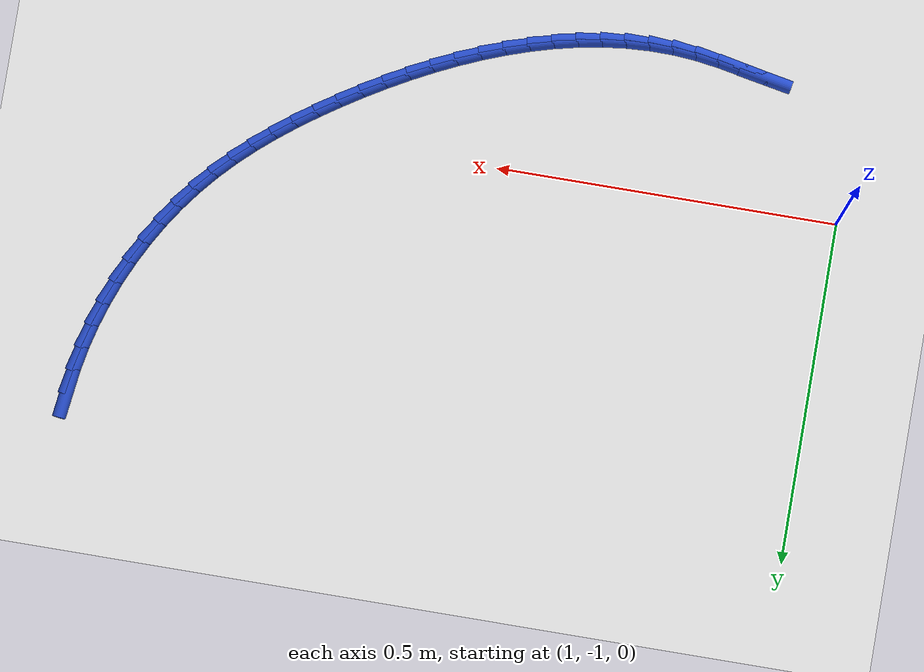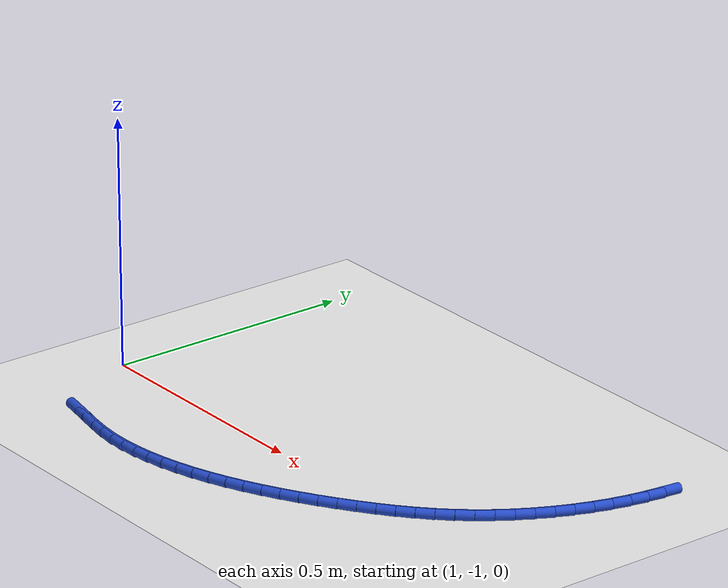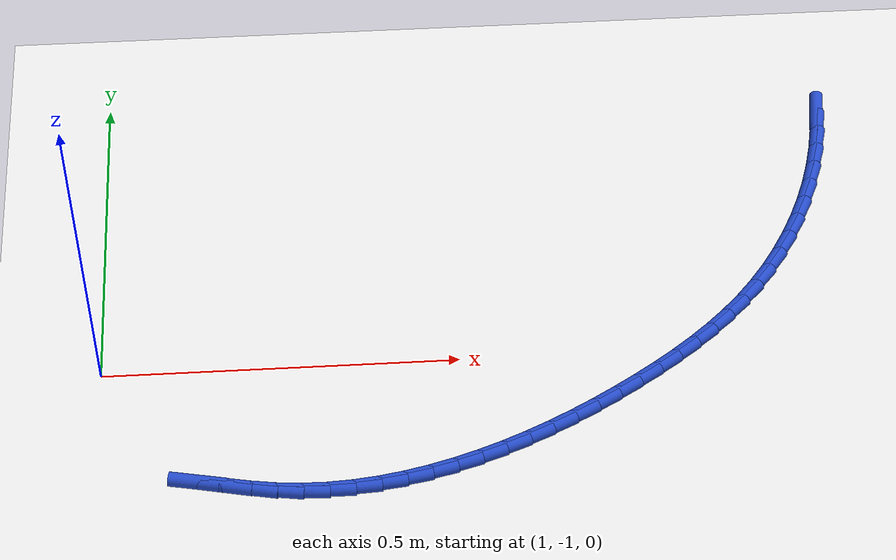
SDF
<sdf version="1.6">
 <world name="default">
  <model name="ground_plane">
   <static>1</static>
   <link name="link">
    <collision name="collision">
     <geometry><plane><normal>0 0 1</normal><size>100 100</size></plane></geometry>
     <surface><friction><ode><mu>100</mu><mu2>50</mu2></ode></friction></surface>
    </collision>
    <visual name="visual">
     <cast_shadows>0</cast_shadows>
     <geometry><plane><normal>0 0 1</normal><size>100 100</size></plane></geometry>
     <material>
      <script><uri>file://media/materials/scripts/gazebo.material</uri><name>Gazebo/WhiteGlow</name></script>
     </material>
    </visual>
   </link>
  </model>
  <model name="line">
   <link name="link_122">
    <pose>2.061591960252401 -0.5762138974735092 0.01 0 1.57 1.4395167184632929</pose>
    <collision name="collision">
     <geometry><cylinder><radius>0.01</radius><length>0.08</length></cylinder></geometry>
    </collision>
    <visual name="visual">
     <material>
      <script><name>Gazebo/Blue</name><uri>file://media/materials/scripts/gazebo.material</uri></script>
     </material>
     <geometry><cylinder><radius>0.01</radius><length>0.08</length></cylinder></geometry>
    </visual>
   </link>
   <link name="link_123">
    <pose>2.0570620439866487 -0.6105213044536851 0.01 0 1.57 1.3784179722360077</pose>
    <collision name="collision">
     <geometry><cylinder><radius>0.01</radius><length>0.08</length></cylinder></geometry>
    </collision>
    <visual name="visual">
     <material>
      <script><name>Gazebo/Blue</name><uri>file://media/materials/scripts/gazebo.material</uri></script>
     </material>
     <geometry><cylinder><radius>0.01</radius><length>0.08</length></cylinder></geometry>
    </visual>
   </link>
   <link name="link_124">
    <pose>2.050372027196258 -0.6448665467615043 0.01 0 1.57 1.319439212764857</pose>
    <collision name="collision">
     <geometry><cylinder><radius>0.01</radius><length>0.08</length></cylinder></geometry>
    </collision>
    <visual name="visual">
     <material>
      <script><name>Gazebo/Blue</name><uri>file://media/materials/scripts/gazebo.material</uri></script>
     </material>
     <geometry><cylinder><radius>0.01</radius><length>0.08</length></cylinder></geometry>
    </visual>
   </link>
   <link name="link_125">
    <pose>2.0415884331198746 -0.6790721692143837 0.01 0 1.57 1.262169212749637</pose>
    <collision name="collision">
     <geometry><cylinder><radius>0.01</radius><length>0.08</length></cylinder></geometry>
    </collision>
    <visual name="visual">
     <material>
      <script><name>Gazebo/Blue</name><uri>file://media/materials/scripts/gazebo.material</uri></script>
     </material>
     <geometry><cylinder><radius>0.01</radius><length>0.08</length></cylinder></geometry>
    </visual>
   </link>
   <link name="link_126">
    <pose>2.0307853260558293 -0.712957422364831 0.01 0 1.57 1.2060122009495136</pose>
    <collision name="collision">
     <geometry><cylinder><radius>0.01</radius><length>0.08</length></cylinder></geometry>
    </collision>
    <visual name="visual">
     <material>
      <script><name>Gazebo/Blue</name><uri>file://media/materials/scripts/gazebo.material</uri></script>
     </material>
     <geometry><cylinder><radius>0.01</radius><length>0.08</length></cylinder></geometry>
    </visual>
   </link>
   <link name="link_127">
    <pose>2.0180367703024498 -0.7463415567653549 0.01 0 1.57 1.1503883381426177</pose>
    <collision name="collision">
     <geometry><cylinder><radius>0.01</radius><length>0.08</length></cylinder></geometry>
    </collision>
    <visual name="visual">
     <material>
      <script><name>Gazebo/Blue</name><uri>file://media/materials/scripts/gazebo.material</uri></script>
     </material>
     <geometry><cylinder><radius>0.01</radius><length>0.08</length></cylinder></geometry>
    </visual>
   </link>
   <link name="link_128">
    <pose>2.0034168301580655 -0.7790438229684645 0.01 0 1.57 1.0947284491717477</pose>
    <collision name="collision">
     <geometry><cylinder><radius>0.01</radius><length>0.08</length></cylinder></geometry>
    </collision>
    <visual name="visual">
     <material>
      <script><name>Gazebo/Blue</name><uri>file://media/materials/scripts/gazebo.material</uri></script>
     </material>
     <geometry><cylinder><radius>0.01</radius><length>0.08</length></cylinder></geometry>
    </visual>
   </link>
   <link name="link_129">
    <pose>1.9869995699210063 -0.8108834715266688 0.01 0 1.57 1.0384680142832199</pose>
    <collision name="collision">
     <geometry><cylinder><radius>0.01</radius><length>0.08</length></cylinder></geometry>
    </collision>
    <visual name="visual">
     <material>
      <script><name>Gazebo/Blue</name><uri>file://media/materials/scripts/gazebo.material</uri></script>
     </material>
     <geometry><cylinder><radius>0.01</radius><length>0.08</length></cylinder></geometry>
    </visual>
   </link>
   <link name="link_130">
    <pose>1.968859053889602 -0.8416797529924764 0.01 0 1.57 0.9810415824294428</pose>
    <collision name="collision">
     <geometry><cylinder><radius>0.01</radius><length>0.08</length></cylinder></geometry>
    </collision>
    <visual name="visual">
     <material>
      <script><name>Gazebo/Blue</name><uri>file://media/materials/scripts/gazebo.material</uri></script>
     </material>
     <geometry><cylinder><radius>0.01</radius><length>0.08</length></cylinder></geometry>
    </visual>
   </link>
   <link name="link_131">
    <pose>1.949069346362181 -0.8712519179183962 0.01 0 1.57 0.9218787624622179</pose>
    <collision name="collision">
     <geometry><cylinder><radius>0.01</radius><length>0.08</length></cylinder></geometry>
    </collision>
    <visual name="visual">
     <material>
      <script><name>Gazebo/Blue</name><uri>file://media/materials/scripts/gazebo.material</uri></script>
     </material>
     <geometry><cylinder><radius>0.01</radius><length>0.08</length></cylinder></geometry>
    </visual>
   </link>
   <link name="link_132">
    <pose>1.9277045116370732 -0.8994192168569375 0.01 0 1.57 0.8609638166483321</pose>
    <collision name="collision">
     <geometry><cylinder><radius>0.01</radius><length>0.08</length></cylinder></geometry>
    </collision>
    <visual name="visual">
     <material>
      <script><name>Gazebo/Blue</name><uri>file://media/materials/scripts/gazebo.material</uri></script>
     </material>
     <geometry><cylinder><radius>0.01</radius><length>0.08</length></cylinder></geometry>
    </visual>
   </link>
   <link name="link_133">
    <pose>1.904841227279127 -0.9260280240328463 0.01 0 1.57 0.8024733586764066</pose>
    <collision name="collision">
     <geometry><cylinder><radius>0.01</radius><length>0.08</length></cylinder></geometry>
    </collision>
    <visual name="visual">
     <material>
      <script><name>Gazebo/Blue</name><uri>file://media/materials/scripts/gazebo.material</uri></script>
     </material>
     <geometry><cylinder><radius>0.01</radius><length>0.08</length></cylinder></geometry>
    </visual>
   </link>
   <link name="link_134">
    <pose>1.880576514487603 -0.9511358647601564 0.01 0 1.57 0.7489972754235198</pose>
    <collision name="collision">
     <geometry><cylinder><radius>0.01</radius><length>0.08</length></cylinder></geometry>
    </collision>
    <visual name="visual">
     <material>
      <script><name>Gazebo/Blue</name><uri>file://media/materials/scripts/gazebo.material</uri></script>
     </material>
     <geometry><cylinder><radius>0.01</radius><length>0.08</length></cylinder></geometry>
    </visual>
   </link>
   <link name="link_135">
    <pose>1.8550169317616545 -0.9748992541017447 0.01 0 1.57 0.7010188673986253</pose>
    <collision name="collision">
     <geometry><cylinder><radius>0.01</radius><length>0.08</length></cylinder></geometry>
    </collision>
    <visual name="visual">
     <material>
      <script><name>Gazebo/Blue</name><uri>file://media/materials/scripts/gazebo.material</uri></script>
     </material>
     <geometry><cylinder><radius>0.01</radius><length>0.08</length></cylinder></geometry>
    </visual>
   </link>
   <link name="link_136">
    <pose>1.8282690923387488 -0.997475275261558 0.01 0 1.57 0.6588134519586387</pose>
    <collision name="collision">
     <geometry><cylinder><radius>0.01</radius><length>0.08</length></cylinder></geometry>
    </collision>
    <visual name="visual">
     <material>
      <script><name>Gazebo/Blue</name><uri>file://media/materials/scripts/gazebo.material</uri></script>
     </material>
     <geometry><cylinder><radius>0.01</radius><length>0.08</length></cylinder></geometry>
    </visual>
   </link>
   <link name="link_137">
    <pose>1.8004396094563502 -1.019021011443542 0.01 0 1.57 0.6224960009613689</pose>
    <collision name="collision">
     <geometry><cylinder><radius>0.01</radius><length>0.08</length></cylinder></geometry>
    </collision>
    <visual name="visual">
     <material>
      <script><name>Gazebo/Blue</name><uri>file://media/materials/scripts/gazebo.material</uri></script>
     </material>
     <geometry><cylinder><radius>0.01</radius><length>0.08</length></cylinder></geometry>
    </visual>
   </link>
   <link name="link_138">
    <pose>1.7716350963519247 -1.0396935458516443 0.01 0 1.57 0.5920486630485645</pose>
    <collision name="collision">
     <geometry><cylinder><radius>0.01</radius><length>0.08</length></cylinder></geometry>
    </collision>
    <visual name="visual">
     <material>
      <script><name>Gazebo/Blue</name><uri>file://media/materials/scripts/gazebo.material</uri></script>
     </material>
     <geometry><cylinder><radius>0.01</radius><length>0.08</length></cylinder></geometry>
    </visual>
   </link>
   <link name="link_139">
    <pose>1.7419620856629652 -1.0596494411866049 0.01 0 1.57 0.5652137620455624</pose>
    <collision name="collision">
     <geometry><cylinder><radius>0.01</radius><length>0.08</length></cylinder></geometry>
    </collision>
    <visual name="visual">
     <material>
      <script><name>Gazebo/Blue</name><uri>file://media/materials/scripts/gazebo.material</uri></script>
     </material>
     <geometry><cylinder><radius>0.01</radius><length>0.08</length></cylinder></geometry>
    </visual>
   </link>
   <link name="link_140">
    <pose>1.7115140186183504 -1.0789607176882994 0.01 0 1.57 0.5372771516855047</pose>
    <collision name="collision">
     <geometry><cylinder><radius>0.01</radius><length>0.08</length></cylinder></geometry>
    </collision>
    <visual name="visual">
     <material>
      <script><name>Gazebo/Blue</name><uri>file://media/materials/scripts/gazebo.material</uri></script>
     </material>
     <geometry><cylinder><radius>0.01</radius><length>0.08</length></cylinder></geometry>
    </visual>
   </link>
   <link name="link_141">
    <pose>1.6803568817410184 -1.0975220969978672 0.01 0 1.57 0.5074628504415593</pose>
    <collision name="collision">
     <geometry><cylinder><radius>0.01</radius><length>0.08</length></cylinder></geometry>
    </collision>
    <visual name="visual">
     <material>
      <script><name>Gazebo/Blue</name><uri>file://media/materials/scripts/gazebo.material</uri></script>
     </material>
     <geometry><cylinder><radius>0.01</radius><length>0.08</length></cylinder></geometry>
    </visual>
   </link>
   <link name="link_142">
    <pose>1.648553204215017 -1.1152059737520355 0.01 0 1.57 0.475553729077518</pose>
    <collision name="collision">
     <geometry><cylinder><radius>0.01</radius><length>0.08</length></cylinder></geometry>
    </collision>
    <visual name="visual">
     <material>
      <script><name>Gazebo/Blue</name><uri>file://media/materials/scripts/gazebo.material</uri></script>
     </material>
     <geometry><cylinder><radius>0.01</radius><length>0.08</length></cylinder></geometry>
    </visual>
   </link>
   <link name="link_143">
    <pose>1.6161655152243954 -1.1318847425875316 0.01 0 1.57 0.44131894659013626</pose>
    <collision name="collision">
     <geometry><cylinder><radius>0.01</radius><length>0.08</length></cylinder></geometry>
    </collision>
    <visual name="visual">
     <material>
      <script><name>Gazebo/Blue</name><uri>file://media/materials/scripts/gazebo.material</uri></script>
     </material>
     <geometry><cylinder><radius>0.01</radius><length>0.08</length></cylinder></geometry>
    </visual>
   </link>
   <link name="link_144">
    <pose>1.583256343953201 -1.1474307981410827 0.01 0 1.57 0.4045147895725027</pose>
    <collision name="collision">
     <geometry><cylinder><radius>0.01</radius><length>0.08</length></cylinder></geometry>
    </collision>
    <visual name="visual">
     <material>
      <script><name>Gazebo/Blue</name><uri>file://media/materials/scripts/gazebo.material</uri></script>
     </material>
     <geometry><cylinder><radius>0.01</radius><length>0.08</length></cylinder></geometry>
    </visual>
   </link>
   <link name="link_145">
    <pose>1.5498882195854802 -1.1617165350494156 0.01 0 1.57 0.3648871686799452</pose>
    <collision name="collision">
     <geometry><cylinder><radius>0.01</radius><length>0.08</length></cylinder></geometry>
    </collision>
    <visual name="visual">
     <material>
      <script><name>Gazebo/Blue</name><uri>file://media/materials/scripts/gazebo.material</uri></script>
     </material>
     <geometry><cylinder><radius>0.01</radius><length>0.08</length></cylinder></geometry>
    </visual>
   </link>
   <link name="link_146">
    <pose>1.516123671305284 -1.1746143479492581 0.01 0 1.57 0.3221763864632618</pose>
    <collision name="collision">
     <geometry><cylinder><radius>0.01</radius><length>0.08</length></cylinder></geometry>
    </collision>
    <visual name="visual">
     <material>
      <script><name>Gazebo/Blue</name><uri>file://media/materials/scripts/gazebo.material</uri></script>
     </material>
     <geometry><cylinder><radius>0.01</radius><length>0.08</length></cylinder></geometry>
    </visual>
   </link>
   <link name="link_147">
    <pose>1.4820252282966584 -1.185996631477336 0.01 0 1.57 0.2761249318939411</pose>
    <collision name="collision">
     <geometry><cylinder><radius>0.01</radius><length>0.08</length></cylinder></geometry>
    </collision>
    <visual name="visual">
     <material>
      <script><name>Gazebo/Blue</name><uri>file://media/materials/scripts/gazebo.material</uri></script>
     </material>
     <geometry><cylinder><radius>0.01</radius><length>0.08</length></cylinder></geometry>
    </visual>
   </link>
   <link name="link_148">
    <pose>1.447655419743652 -1.1957357802703779 0.01 0 1.57 0.22648914557620867</pose>
    <collision name="collision">
     <geometry><cylinder><radius>0.01</radius><length>0.08</length></cylinder></geometry>
    </collision>
    <visual name="visual">
     <material>
      <script><name>Gazebo/Blue</name><uri>file://media/materials/scripts/gazebo.material</uri></script>
     </material>
     <geometry><cylinder><radius>0.01</radius><length>0.08</length></cylinder></geometry>
    </visual>
   </link>
   <link name="link_149">
    <pose>1.4130767748303128 -1.2037041889651106 0.01 0 1.57 0.17305555993520297</pose>
    <collision name="collision">
     <geometry><cylinder><radius>0.01</radius><length>0.08</length></cylinder></geometry>
    </collision>
    <visual name="visual">
     <material>
      <script><name>Gazebo/Blue</name><uri>file://media/materials/scripts/gazebo.material</uri></script>
     </material>
     <geometry><cylinder><radius>0.01</radius><length>0.08</length></cylinder></geometry>
    </visual>
   </link>
   <link name="link_150">
    <pose>1.378351822740689 -1.2097742521982608 0.01 0 1.57 0.11566243641325029</pose>
    <collision name="collision">
     <geometry><cylinder><radius>0.01</radius><length>0.08</length></cylinder></geometry>
    </collision>
    <visual name="visual">
     <material>
      <script><name>Gazebo/Blue</name><uri>file://media/materials/scripts/gazebo.material</uri></script>
     </material>
     <geometry><cylinder><radius>0.01</radius><length>0.08</length></cylinder></geometry>
    </visual>
   </link>
   <link name="link_151">
    <pose>1.3435430926588274 -1.2138183646065563 0.01 0 1.57 0.05422635494868184</pose>
    <collision name="collision">
     <geometry><cylinder><radius>0.01</radius><length>0.08</length></cylinder></geometry>
    </collision>
    <visual name="visual">
     <material>
      <script><name>Gazebo/Blue</name><uri>file://media/materials/scripts/gazebo.material</uri></script>
     </material>
     <geometry><cylinder><radius>0.01</radius><length>0.08</length></cylinder></geometry>
    </visual>
   </link>
   <link name="link_152">
    <pose>1.3087131137687775 -1.2157089208267238 0.01 0 1.57 -0.011227465673154245</pose>
    <collision name="collision">
     <geometry><cylinder><radius>0.01</radius><length>0.08</length></cylinder></geometry>
    </collision>
    <visual name="visual">
     <material>
      <script><name>Gazebo/Blue</name><uri>file://media/materials/scripts/gazebo.material</uri></script>
     </material>
     <geometry><cylinder><radius>0.01</radius><length>0.08</length></cylinder></geometry>
    </visual>
   </link>
   <link name="link_153">
    <pose>1.2739244152545872 -1.2153183154954907 0.01 0 1.57 -0.08053160117296351</pose>
    <collision name="collision">
     <geometry><cylinder><radius>0.01</radius><length>0.08</length></cylinder></geometry>
    </collision>
    <visual name="visual">
     <material>
      <script><name>Gazebo/Blue</name><uri>file://media/materials/scripts/gazebo.material</uri></script>
     </material>
     <geometry><cylinder><radius>0.01</radius><length>0.08</length></cylinder></geometry>
    </visual>
   </link>
   <link name="link_154">
    <pose>1.239239516386358 -1.2125190309990113 0.01 0 1.57 -0.14675617601136834</pose>
    <collision name="collision">
     <geometry><cylinder><radius>0.01</radius><length>0.08</length></cylinder></geometry>
    </collision>
    <visual name="visual">
     <material>
      <script><name>Gazebo/Blue</name><uri>file://media/materials/scripts/gazebo.material</uri></script>
     </material>
     <geometry><cylinder><radius>0.01</radius><length>0.08</length></cylinder></geometry>
    </visual>
   </link>
   <link name="link_155">
    <pose>1.2046950464305695 -1.207412704988866 0.01 0 1.57 -0.18889675826331379</pose>
    <collision name="collision">
     <geometry><cylinder><radius>0.01</radius><length>0.08</length></cylinder></geometry>
    </collision>
    <visual name="visual">
     <material>
      <script><name>Gazebo/Blue</name><uri>file://media/materials/scripts/gazebo.material</uri></script>
     </material>
     <geometry><cylinder><radius>0.01</radius><length>0.08</length></cylinder></geometry>
    </visual>
   </link>
   <link name="link_156">
    <pose>1.1702456305617979 -1.200826802340165 0.01 0 1.57 -0.20329646397465018</pose>
    <collision name="collision">
     <geometry><cylinder><radius>0.01</radius><length>0.08</length></cylinder></geometry>
    </collision>
    <visual name="visual">
     <material>
      <script><name>Gazebo/Blue</name><uri>file://media/materials/scripts/gazebo.material</uri></script>
     </material>
     <geometry><cylinder><radius>0.01</radius><length>0.08</length></cylinder></geometry>
    </visual>
   </link>
   <link name="link_157">
    <pose>1.135829696323166 -1.193732154942909 0.01 0 1.57 -0.190232112084171</pose>
    <collision name="collision">
     <geometry><cylinder><radius>0.01</radius><length>0.08</length></cylinder></geometry>
    </collision>
    <visual name="visual">
     <material>
      <script><name>Gazebo/Blue</name><uri>file://media/materials/scripts/gazebo.material</uri></script>
     </material>
     <geometry><cylinder><radius>0.01</radius><length>0.08</length></cylinder></geometry>
    </visual>
   </link>
  </model>
 </world>
</sdf>
